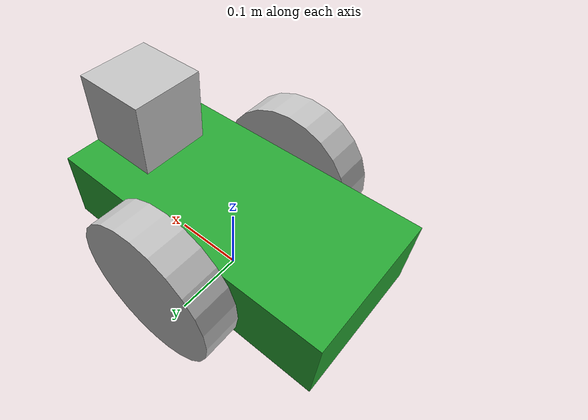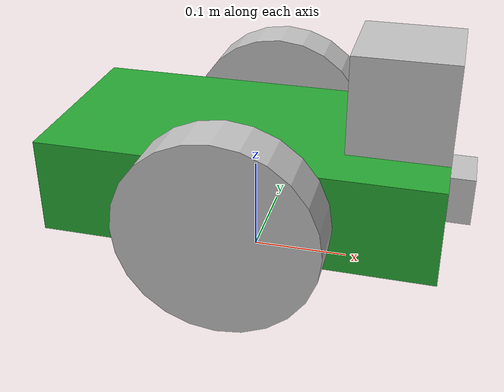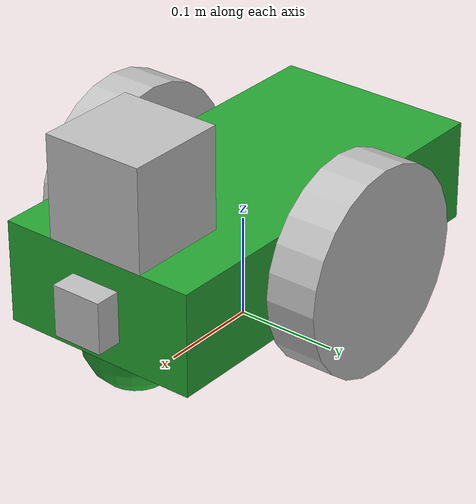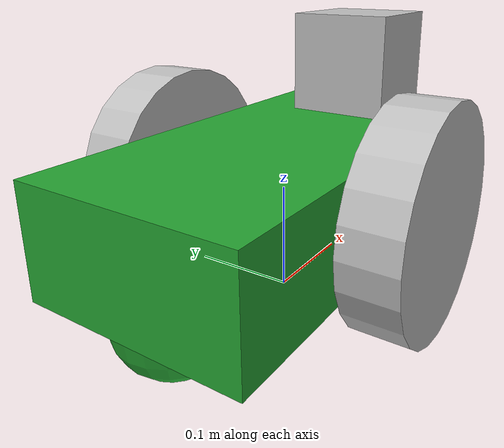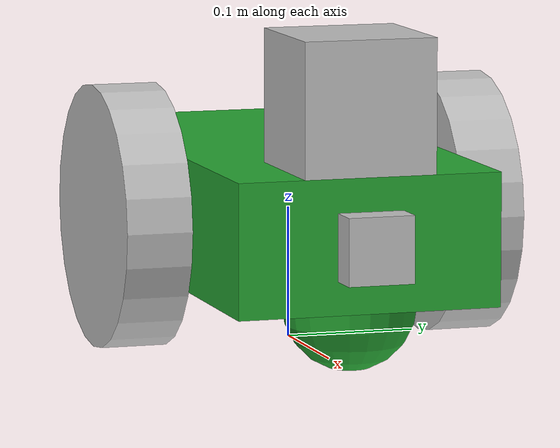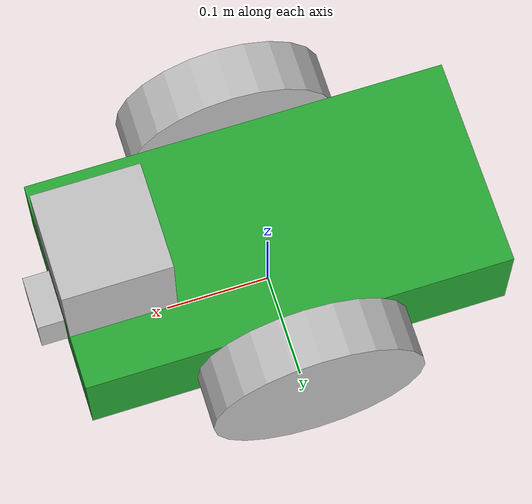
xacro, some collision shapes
<?xml version='1.0'?>

<robot name="my_robot" xmlns:xacro="http://www.ros.org/wiki/xacro">

  <xacro:include filename="$(find pick_objects)/urdf/my_robot.gazebo" />
  <link name="robot_footprint"></link>

  <joint name="robot_footprint_joint" type="fixed">
    <origin xyz="0 0 0.1" rpy="0 0 0" />
    <parent link="robot_footprint"/>
    <child link="chassis" />
  </joint>

  <link name='chassis'>
    <pose>0 0 0.1 0 0 0</pose>

    <inertial>
      <mass value="15.0"/>
      <origin xyz="0.0 0 0" rpy=" 0 0 0"/>
      <inertia
          ixx="0.1" ixy="0" ixz="0"
          iyy="0.1" iyz="0"
          izz="0.1"
      />
    </inertial>

    <collision name='collision'>
      <origin xyz="0 0 0" rpy=" 0 0 0"/>
      <geometry>
        <box size=".4 .2 .1"/>
      </geometry>
    </collision>

    <visual name='chassis_visual'>
      <origin xyz="0 0 0" rpy=" 0 0 0"/>
      <geometry>
        <box size=".4 .2 .1"/>
      </geometry>
    </visual>

    <collision name='back_caster_collision'>
      <origin xyz="-0.15 0 -0.05" rpy=" 0 0 0"/>
      <geometry>
        <sphere radius="0.0499"/>
      </geometry>
    </collision>

    <visual name='back_caster_visual'>
      <origin xyz="-0.15 0 -0.05" rpy=" 0 0 0"/>
      <geometry>
        <sphere radius="0.05"/>
      </geometry>
    </visual>

    <collision name='front_caster_collision'>
      <origin xyz="0.15 0 -0.05" rpy=" 0 0 0"/>
      <geometry>
        <sphere radius="0.0499"/>
      </geometry>
    </collision>

    <visual name='front_caster_visual'>
      <origin xyz="0.15 0 -0.05" rpy=" 0 0 0"/>
      <geometry>
        <sphere radius="0.05"/>
      </geometry>
    </visual>

  </link>

  <link name="left_wheel">
    <inertial>
      <origin xyz="0 0 0" rpy="0 1.5707 1.5707"/>
      <mass value="5"/>
      <inertia ixx="0.1" ixy="0" ixz="0" iyy="0.1" iyz="0" izz="0.1"/>
    </inertial>
    <visual>
      <origin xyz="0 0 0" rpy="0 1.5707 1.5707"/>
      <geometry>
        <cylinder radius="0.1" length="0.05"/>
      </geometry>
      <material name="">
        <color rgba="0.75294 0.75294 0.75294 1"/>
      </material>
    </visual>
    <collision>
      <origin xyz="0 0 0" rpy="0 1.5707 1.5707"/>
      <geometry>
        <cylinder radius="0.1" length="0.05"/>
      </geometry>
    </collision>
  </link>

  <joint type="continuous" name="left_wheel_hinge">
    <origin xyz="0 0.13 0" rpy="0 0 0"/>
    <child link="left_wheel"/>
    <parent link="chassis"/>
    <axis xyz="0 1 0" rpy="0 0 0"/>
    <limit effort="10000" velocity="1000"/>
    <dynamics damping="1.0" friction="1.0"/>
  </joint>

  <link name="right_wheel">
    <inertial>
      <origin xyz="0 0 0" rpy="0 1.5707 1.5707"/>
      <mass value="5"/>
      <inertia ixx="0.1" ixy="0" ixz="0" iyy="0.1" iyz="0" izz="0.1"/>
    </inertial>
    <visual>
      <origin xyz="0 0 0" rpy="0 1.5707 1.5707"/>
      <geometry>
        <cylinder radius="0.1" length="0.05"/>
      </geometry>
      <material name="">
        <color rgba="0.75294 0.75294 0.75294 1"/>
      </material>
    </visual>
    <collision>
      <origin xyz="0 0 0" rpy="0 1.5707 1.5707"/>
      <geometry>
        <cylinder radius="0.1" length="0.05"/>
      </geometry>
    </collision>
  </link>

  <joint type="continuous" name="right_wheel_hinge">
    <origin xyz="0 -0.13 0" rpy="0 0 0"/>
    <child link="right_wheel"/>
    <parent link="chassis"/>
    <axis xyz="0 1 0" rpy="0 0 0"/>
    <limit effort="10000" velocity="1000"/>
    <dynamics damping="1.0" friction="1.0"/>
  </joint>

  <link name="camera">
    <inertial>
      <origin xyz="0 0 0" rpy="0 0 0"/>
      <mass value="0.1"/>
      <inertia ixx="1e-6" ixy="0" ixz="0" iyy="1e-6" iyz="0" izz="1e-6"/>
    </inertial>
    <visual>
      <origin xyz="0 0 0" rpy="0 0 0"/>
      <geometry>
        <box size=".05 .05 .05"/>
      </geometry>
      <material name="">
        <color rgba="0.75294 0.75294 0.75294 1"/>
      </material>
    </visual>
    <collision>
      <origin xyz="0 0 0" rpy="0 0 0"/>
      <geometry>
        <box size=".05 .05 .05"/>
      </geometry>
    </collision>
  </link>

  <joint type="fixed" name="camera_joint">
    <origin xyz="0.2 0 0" rpy="0 0 0"/>
    <child link="camera"/>
    <parent link="chassis"/>
    <axis xyz="0 1 0" rpy="0 0 0"/>
    <limit effort="10000" velocity="1000"/>
    <dynamics damping="1.0" friction="1.0"/>
  </joint>

<link name="hokuyo">
    <inertial>
      <origin xyz="0 0 0" rpy="0 0 0"/>
      <mass value="1e-5"/>
      <inertia ixx="1e-6" ixy="0" ixz="0" iyy="1e-6" iyz="0" izz="1e-6"/>
    </inertial>
    <visual>
      <origin xyz="0 0 0" rpy="0 0 0"/>
      <geometry>
        <mesh filename="package://pick_objects/meshes/hokuyo.dae"/>
      </geometry>
      <material name="">
        <color rgba="0.75294 0.75294 0.75294 1"/>
      </material>
    </visual>
    <collision>
      <origin xyz="0 0 0" rpy="0 0 0"/>
      <geometry>
        <box size=".1 .1 .1"/>
      </geometry>
    </collision>
  </link>

  <joint type="fixed" name="hokuyo_joint">
    <origin xyz="0.15 0 0.1" rpy="0 0 0"/>
    <child link="hokuyo"/>
    <parent link="chassis"/>
    <axis xyz="0 1 0" rpy="0 0 0"/>
    <limit effort="10000" velocity="1000"/>
    <dynamics damping="1.0" friction="1.0"/>
  </joint>

  <gazebo reference="camera">
    <material>Gazebo/Black</material>
  </gazebo>

  <gazebo reference="chassis">
    <material>Gazebo/Green</material>
  </gazebo>

</robot>
